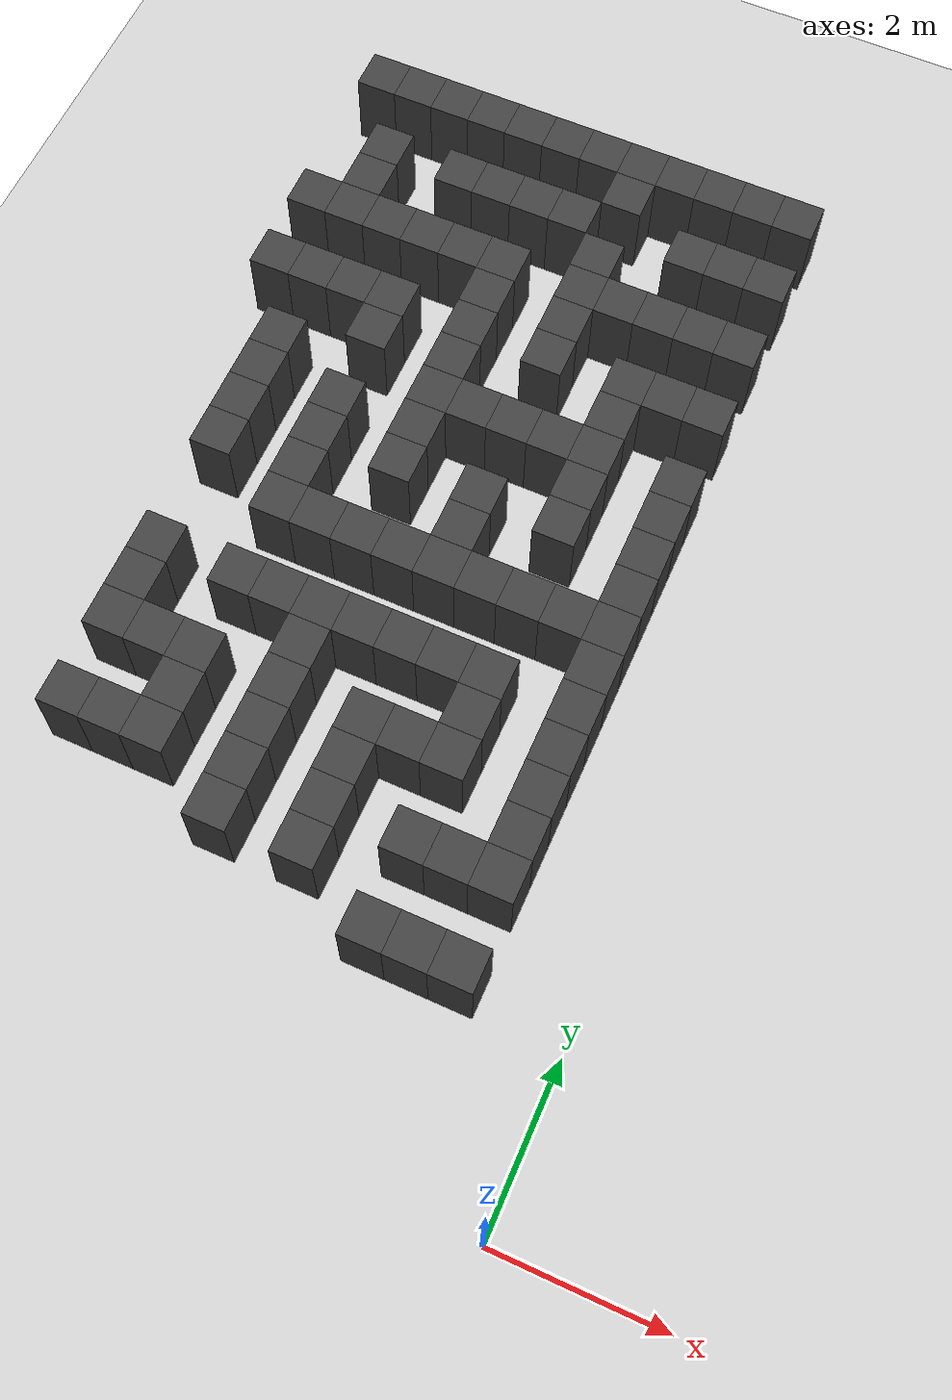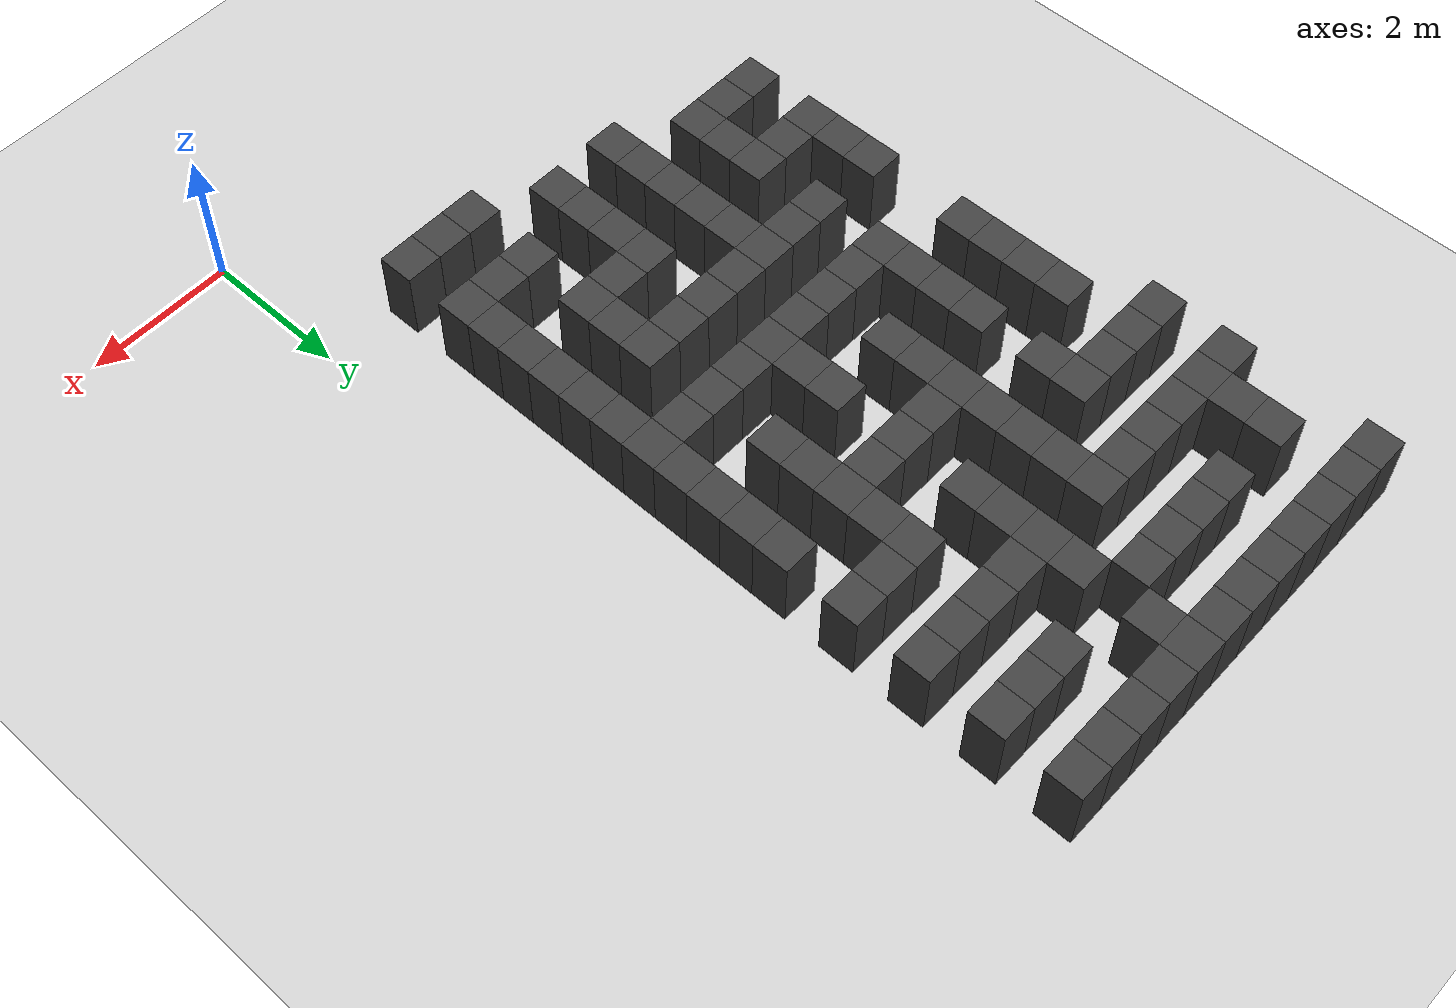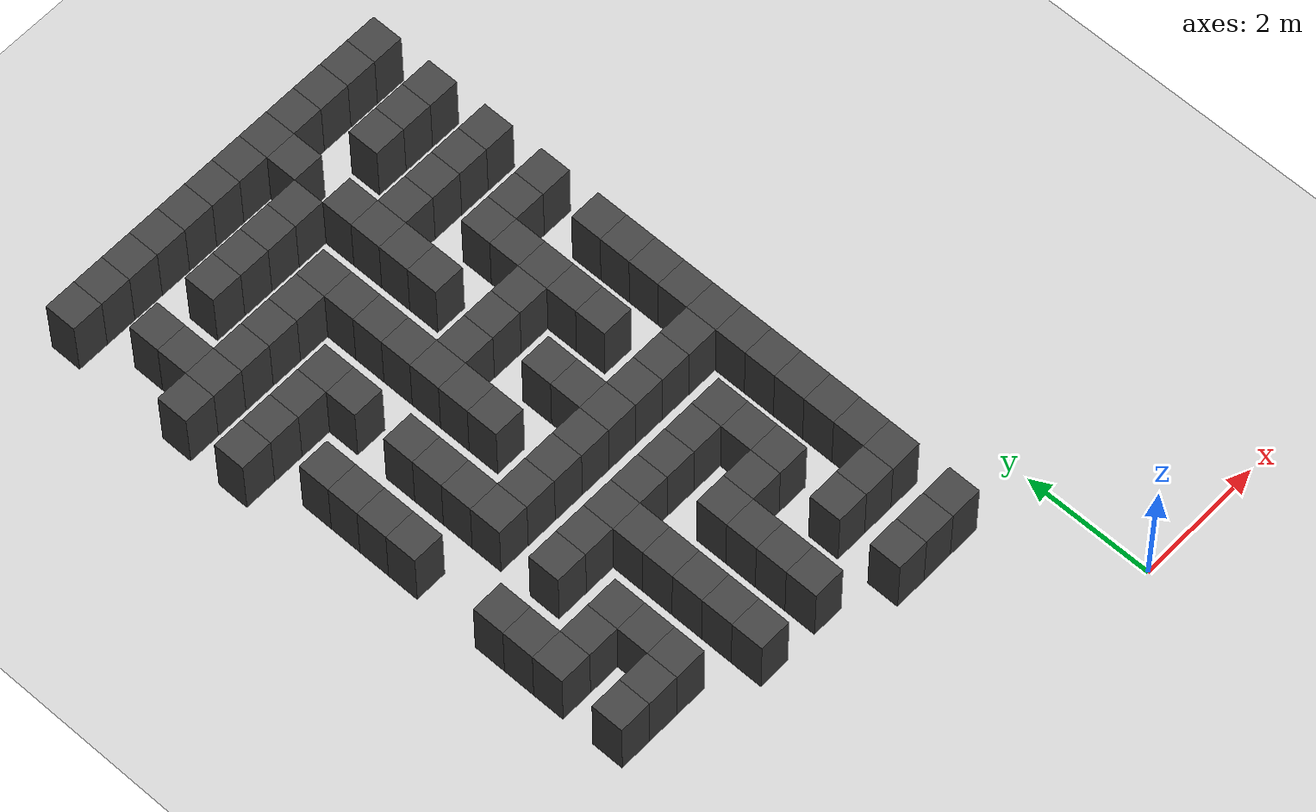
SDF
<sdf version="1.7">
 <world name="map_18596">
  <model name="ground_plane">
   <static>true</static>
   <link name="link">
    <collision name="collision">
     <geometry><plane><normal>0 0 1</normal><size>200 200</size></plane></geometry>
    </collision>
    <visual name="visual">
     <geometry><plane><normal>0 0 1</normal><size>200 200</size></plane></geometry>
     <material><ambient>0.8 0.8 0.8 1</ambient><diffuse>0.8 0.8 0.8 1</diffuse></material>
    </visual>
   </link>
  </model>
  <model name="maze_environment">
   <static>true</static>
   <link name="wall_11">
    <pose>-6.750 12.250 0.500 0 0 0</pose>
    <collision name="col"><geometry><box><size>0.5 0.5 1.0</size></box></geometry></collision>
    <visual name="vis">
     <geometry><box><size>0.5 0.5 1.0</size></box></geometry>
     <material><ambient>0.15 0.15 0.15 1</ambient><diffuse>0.25 0.25 0.25 1</diffuse></material>
    </visual>
   </link>
   <link name="wall_12">
    <pose>-6.250 12.250 0.500 0 0 0</pose>
    <collision name="col"><geometry><box><size>0.5 0.5 1.0</size></box></geometry></collision>
    <visual name="vis">
     <geometry><box><size>0.5 0.5 1.0</size></box></geometry>
     <material><ambient>0.15 0.15 0.15 1</ambient><diffuse>0.25 0.25 0.25 1</diffuse></material>
    </visual>
   </link>
   <link name="wall_13">
    <pose>-5.750 12.250 0.500 0 0 0</pose>
    <collision name="col"><geometry><box><size>0.5 0.5 1.0</size></box></geometry></collision>
    <visual name="vis">
     <geometry><box><size>0.5 0.5 1.0</size></box></geometry>
     <material><ambient>0.15 0.15 0.15 1</ambient><diffuse>0.25 0.25 0.25 1</diffuse></material>
    </visual>
   </link>
   <link name="wall_14">
    <pose>-5.250 12.250 0.500 0 0 0</pose>
    <collision name="col"><geometry><box><size>0.5 0.5 1.0</size></box></geometry></collision>
    <visual name="vis">
     <geometry><box><size>0.5 0.5 1.0</size></box></geometry>
     <material><ambient>0.15 0.15 0.15 1</ambient><diffuse>0.25 0.25 0.25 1</diffuse></material>
    </visual>
   </link>
   <link name="wall_15">
    <pose>-4.750 12.250 0.500 0 0 0</pose>
    <collision name="col"><geometry><box><size>0.5 0.5 1.0</size></box></geometry></collision>
    <visual name="vis">
     <geometry><box><size>0.5 0.5 1.0</size></box></geometry>
     <material><ambient>0.15 0.15 0.15 1</ambient><diffuse>0.25 0.25 0.25 1</diffuse></material>
    </visual>
   </link>
   <link name="wall_16">
    <pose>-4.250 12.250 0.500 0 0 0</pose>
    <collision name="col"><geometry><box><size>0.5 0.5 1.0</size></box></geometry></collision>
    <visual name="vis">
     <geometry><box><size>0.5 0.5 1.0</size></box></geometry>
     <material><ambient>0.15 0.15 0.15 1</ambient><diffuse>0.25 0.25 0.25 1</diffuse></material>
    </visual>
   </link>
   <link name="wall_17">
    <pose>-3.750 12.250 0.500 0 0 0</pose>
    <collision name="col"><geometry><box><size>0.5 0.5 1.0</size></box></geometry></collision>
    <visual name="vis">
     <geometry><box><size>0.5 0.5 1.0</size></box></geometry>
     <material><ambient>0.15 0.15 0.15 1</ambient><diffuse>0.25 0.25 0.25 1</diffuse></material>
    </visual>
   </link>
   <link name="wall_18">
    <pose>-3.250 12.250 0.500 0 0 0</pose>
    <collision name="col"><geometry><box><size>0.5 0.5 1.0</size></box></geometry></collision>
    <visual name="vis">
     <geometry><box><size>0.5 0.5 1.0</size></box></geometry>
     <material><ambient>0.15 0.15 0.15 1</ambient><diffuse>0.25 0.25 0.25 1</diffuse></material>
    </visual>
   </link>
   <link name="wall_19">
    <pose>-2.750 12.250 0.500 0 0 0</pose>
    <collision name="col"><geometry><box><size>0.5 0.5 1.0</size></box></geometry></collision>
    <visual name="vis">
     <geometry><box><size>0.5 0.5 1.0</size></box></geometry>
     <material><ambient>0.15 0.15 0.15 1</ambient><diffuse>0.25 0.25 0.25 1</diffuse></material>
    </visual>
   </link>
   <link name="wall_20">
    <pose>-2.250 12.250 0.500 0 0 0</pose>
    <collision name="col"><geometry><box><size>0.5 0.5 1.0</size></box></geometry></collision>
    <visual name="vis">
     <geometry><box><size>0.5 0.5 1.0</size></box></geometry>
     <material><ambient>0.15 0.15 0.15 1</ambient><diffuse>0.25 0.25 0.25 1</diffuse></material>
    </visual>
   </link>
   <link name="wall_21">
    <pose>-1.750 12.250 0.500 0 0 0</pose>
    <collision name="col"><geometry><box><size>0.5 0.5 1.0</size></box></geometry></collision>
    <visual name="vis">
     <geometry><box><size>0.5 0.5 1.0</size></box></geometry>
     <material><ambient>0.15 0.15 0.15 1</ambient><diffuse>0.25 0.25 0.25 1</diffuse></material>
    </visual>
   </link>
   <link name="wall_22">
    <pose>-1.250 12.250 0.500 0 0 0</pose>
    <collision name="col"><geometry><box><size>0.5 0.5 1.0</size></box></geometry></collision>
    <visual name="vis">
     <geometry><box><size>0.5 0.5 1.0</size></box></geometry>
     <material><ambient>0.15 0.15 0.15 1</ambient><diffuse>0.25 0.25 0.25 1</diffuse></material>
    </visual>
   </link>
   <link name="wall_54">
    <pose>-3.250 11.750 0.500 0 0 0</pose>
    <collision name="col"><geometry><box><size>0.5 0.5 1.0</size></box></geometry></collision>
    <visual name="vis">
     <geometry><box><size>0.5 0.5 1.0</size></box></geometry>
     <material><ambient>0.15 0.15 0.15 1</ambient><diffuse>0.25 0.25 0.25 1</diffuse></material>
    </visual>
   </link>
   <link name="wall_65">
    <pose>-6.250 11.250 0.500 0 0 0</pose>
    <collision name="col"><geometry><box><size>0.5 0.5 1.0</size></box></geometry></collision>
    <visual name="vis">
     <geometry><box><size>0.5 0.5 1.0</size></box></geometry>
     <material><ambient>0.15 0.15 0.15 1</ambient><diffuse>0.25 0.25 0.25 1</diffuse></material>
    </visual>
   </link>
   <link name="wall_66">
    <pose>-5.250 11.250 0.500 0 0 0</pose>
    <collision name="col"><geometry><box><size>0.5 0.5 1.0</size></box></geometry></collision>
    <visual name="vis">
     <geometry><box><size>0.5 0.5 1.0</size></box></geometry>
     <material><ambient>0.15 0.15 0.15 1</ambient><diffuse>0.25 0.25 0.25 1</diffuse></material>
    </visual>
   </link>
   <link name="wall_67">
    <pose>-4.750 11.250 0.500 0 0 0</pose>
    <collision name="col"><geometry><box><size>0.5 0.5 1.0</size></box></geometry></collision>
    <visual name="vis">
     <geometry><box><size>0.5 0.5 1.0</size></box></geometry>
     <material><ambient>0.15 0.15 0.15 1</ambient><diffuse>0.25 0.25 0.25 1</diffuse></material>
    </visual>
   </link>
   <link name="wall_68">
    <pose>-4.250 11.250 0.500 0 0 0</pose>
    <collision name="col"><geometry><box><size>0.5 0.5 1.0</size></box></geometry></collision>
    <visual name="vis">
     <geometry><box><size>0.5 0.5 1.0</size></box></geometry>
     <material><ambient>0.15 0.15 0.15 1</ambient><diffuse>0.25 0.25 0.25 1</diffuse></material>
    </visual>
   </link>
   <link name="wall_69">
    <pose>-3.750 11.250 0.500 0 0 0</pose>
    <collision name="col"><geometry><box><size>0.5 0.5 1.0</size></box></geometry></collision>
    <visual name="vis">
     <geometry><box><size>0.5 0.5 1.0</size></box></geometry>
     <material><ambient>0.15 0.15 0.15 1</ambient><diffuse>0.25 0.25 0.25 1</diffuse></material>
    </visual>
   </link>
   <link name="wall_70">
    <pose>-2.250 11.250 0.500 0 0 0</pose>
    <collision name="col"><geometry><box><size>0.5 0.5 1.0</size></box></geometry></collision>
    <visual name="vis">
     <geometry><box><size>0.5 0.5 1.0</size></box></geometry>
     <material><ambient>0.15 0.15 0.15 1</ambient><diffuse>0.25 0.25 0.25 1</diffuse></material>
    </visual>
   </link>
   <link name="wall_71">
    <pose>-1.750 11.250 0.500 0 0 0</pose>
    <collision name="col"><geometry><box><size>0.5 0.5 1.0</size></box></geometry></collision>
    <visual name="vis">
     <geometry><box><size>0.5 0.5 1.0</size></box></geometry>
     <material><ambient>0.15 0.15 0.15 1</ambient><diffuse>0.25 0.25 0.25 1</diffuse></material>
    </visual>
   </link>
   <link name="wall_72">
    <pose>-1.250 11.250 0.500 0 0 0</pose>
    <collision name="col"><geometry><box><size>0.5 0.5 1.0</size></box></geometry></collision>
    <visual name="vis">
     <geometry><box><size>0.5 0.5 1.0</size></box></geometry>
     <material><ambient>0.15 0.15 0.15 1</ambient><diffuse>0.25 0.25 0.25 1</diffuse></material>
    </visual>
   </link>
   <link name="wall_96">
    <pose>-6.250 10.750 0.500 0 0 0</pose>
    <collision name="col"><geometry><box><size>0.5 0.5 1.0</size></box></geometry></collision>
    <visual name="vis">
     <geometry><box><size>0.5 0.5 1.0</size></box></geometry>
     <material><ambient>0.15 0.15 0.15 1</ambient><diffuse>0.25 0.25 0.25 1</diffuse></material>
    </visual>
   </link>
   <link name="wall_97">
    <pose>-3.250 10.750 0.500 0 0 0</pose>
    <collision name="col"><geometry><box><size>0.5 0.5 1.0</size></box></geometry></collision>
    <visual name="vis">
     <geometry><box><size>0.5 0.5 1.0</size></box></geometry>
     <material><ambient>0.15 0.15 0.15 1</ambient><diffuse>0.25 0.25 0.25 1</diffuse></material>
    </visual>
   </link>
   <link name="wall_116">
    <pose>-6.750 10.250 0.500 0 0 0</pose>
    <collision name="col"><geometry><box><size>0.5 0.5 1.0</size></box></geometry></collision>
    <visual name="vis">
     <geometry><box><size>0.5 0.5 1.0</size></box></geometry>
     <material><ambient>0.15 0.15 0.15 1</ambient><diffuse>0.25 0.25 0.25 1</diffuse></material>
    </visual>
   </link>
   <link name="wall_117">
    <pose>-6.250 10.250 0.500 0 0 0</pose>
    <collision name="col"><geometry><box><size>0.5 0.5 1.0</size></box></geometry></collision>
    <visual name="vis">
     <geometry><box><size>0.5 0.5 1.0</size></box></geometry>
     <material><ambient>0.15 0.15 0.15 1</ambient><diffuse>0.25 0.25 0.25 1</diffuse></material>
    </visual>
   </link>
   <link name="wall_118">
    <pose>-5.750 10.250 0.500 0 0 0</pose>
    <collision name="col"><geometry><box><size>0.5 0.5 1.0</size></box></geometry></collision>
    <visual name="vis">
     <geometry><box><size>0.5 0.5 1.0</size></box></geometry>
     <material><ambient>0.15 0.15 0.15 1</ambient><diffuse>0.25 0.25 0.25 1</diffuse></material>
    </visual>
   </link>
   <link name="wall_119">
    <pose>-5.250 10.250 0.500 0 0 0</pose>
    <collision name="col"><geometry><box><size>0.5 0.5 1.0</size></box></geometry></collision>
    <visual name="vis">
     <geometry><box><size>0.5 0.5 1.0</size></box></geometry>
     <material><ambient>0.15 0.15 0.15 1</ambient><diffuse>0.25 0.25 0.25 1</diffuse></material>
    </visual>
   </link>
   <link name="wall_120">
    <pose>-4.750 10.250 0.500 0 0 0</pose>
    <collision name="col"><geometry><box><size>0.5 0.5 1.0</size></box></geometry></collision>
    <visual name="vis">
     <geometry><box><size>0.5 0.5 1.0</size></box></geometry>
     <material><ambient>0.15 0.15 0.15 1</ambient><diffuse>0.25 0.25 0.25 1</diffuse></material>
    </visual>
   </link>
   <link name="wall_121">
    <pose>-4.250 10.250 0.500 0 0 0</pose>
    <collision name="col"><geometry><box><size>0.5 0.5 1.0</size></box></geometry></collision>
    <visual name="vis">
     <geometry><box><size>0.5 0.5 1.0</size></box></geometry>
     <material><ambient>0.15 0.15 0.15 1</ambient><diffuse>0.25 0.25 0.25 1</diffuse></material>
    </visual>
   </link>
   <link name="wall_122">
    <pose>-3.250 10.250 0.500 0 0 0</pose>
    <collision name="col"><geometry><box><size>0.5 0.5 1.0</size></box></geometry></collision>
    <visual name="vis">
     <geometry><box><size>0.5 0.5 1.0</size></box></geometry>
     <material><ambient>0.15 0.15 0.15 1</ambient><diffuse>0.25 0.25 0.25 1</diffuse></material>
    </visual>
   </link>
   <link name="wall_123">
    <pose>-2.750 10.250 0.500 0 0 0</pose>
    <collision name="col"><geometry><box><size>0.5 0.5 1.0</size></box></geometry></collision>
    <visual name="vis">
     <geometry><box><size>0.5 0.5 1.0</size></box></geometry>
     <material><ambient>0.15 0.15 0.15 1</ambient><diffuse>0.25 0.25 0.25 1</diffuse></material>
    </visual>
   </link>
   <link name="wall_124">
    <pose>-2.250 10.250 0.500 0 0 0</pose>
    <collision name="col"><geometry><box><size>0.5 0.5 1.0</size></box></geometry></collision>
    <visual name="vis">
     <geometry><box><size>0.5 0.5 1.0</size></box></geometry>
     <material><ambient>0.15 0.15 0.15 1</ambient><diffuse>0.25 0.25 0.25 1</diffuse></material>
    </visual>
   </link>
   <link name="wall_125">
    <pose>-1.750 10.250 0.500 0 0 0</pose>
    <collision name="col"><geometry><box><size>0.5 0.5 1.0</size></box></geometry></collision>
    <visual name="vis">
     <geometry><box><size>0.5 0.5 1.0</size></box></geometry>
     <material><ambient>0.15 0.15 0.15 1</ambient><diffuse>0.25 0.25 0.25 1</diffuse></material>
    </visual>
   </link>
   <link name="wall_126">
    <pose>-1.250 10.250 0.500 0 0 0</pose>
    <collision name="col"><geometry><box><size>0.5 0.5 1.0</size></box></geometry></collision>
    <visual name="vis">
     <geometry><box><size>0.5 0.5 1.0</size></box></geometry>
     <material><ambient>0.15 0.15 0.15 1</ambient><diffuse>0.25 0.25 0.25 1</diffuse></material>
    </visual>
   </link>
   <link name="wall_148">
    <pose>-4.250 9.750 0.500 0 0 0</pose>
    <collision name="col"><geometry><box><size>0.5 0.5 1.0</size></box></geometry></collision>
    <visual name="vis">
     <geometry><box><size>0.5 0.5 1.0</size></box></geometry>
     <material><ambient>0.15 0.15 0.15 1</ambient><diffuse>0.25 0.25 0.25 1</diffuse></material>
    </visual>
   </link>
   <link name="wall_149">
    <pose>-3.250 9.750 0.500 0 0 0</pose>
    <collision name="col"><geometry><box><size>0.5 0.5 1.0</size></box></geometry></collision>
    <visual name="vis">
     <geometry><box><size>0.5 0.5 1.0</size></box></geometry>
     <material><ambient>0.15 0.15 0.15 1</ambient><diffuse>0.25 0.25 0.25 1</diffuse></material>
    </visual>
   </link>
   <link name="wall_165">
    <pose>-6.750 9.250 0.500 0 0 0</pose>
    <collision name="col"><geometry><box><size>0.5 0.5 1.0</size></box></geometry></collision>
    <visual name="vis">
     <geometry><box><size>0.5 0.5 1.0</size></box></geometry>
     <material><ambient>0.15 0.15 0.15 1</ambient><diffuse>0.25 0.25 0.25 1</diffuse></material>
    </visual>
   </link>
   <link name="wall_166">
    <pose>-6.250 9.250 0.500 0 0 0</pose>
    <collision name="col"><geometry><box><size>0.5 0.5 1.0</size></box></geometry></collision>
    <visual name="vis">
     <geometry><box><size>0.5 0.5 1.0</size></box></geometry>
     <material><ambient>0.15 0.15 0.15 1</ambient><diffuse>0.25 0.25 0.25 1</diffuse></material>
    </visual>
   </link>
   <link name="wall_167">
    <pose>-5.750 9.250 0.500 0 0 0</pose>
    <collision name="col"><geometry><box><size>0.5 0.5 1.0</size></box></geometry></collision>
    <visual name="vis">
     <geometry><box><size>0.5 0.5 1.0</size></box></geometry>
     <material><ambient>0.15 0.15 0.15 1</ambient><diffuse>0.25 0.25 0.25 1</diffuse></material>
    </visual>
   </link>
   <link name="wall_168">
    <pose>-5.250 9.250 0.500 0 0 0</pose>
    <collision name="col"><geometry><box><size>0.5 0.5 1.0</size></box></geometry></collision>
    <visual name="vis">
     <geometry><box><size>0.5 0.5 1.0</size></box></geometry>
     <material><ambient>0.15 0.15 0.15 1</ambient><diffuse>0.25 0.25 0.25 1</diffuse></material>
    </visual>
   </link>
   <link name="wall_169">
    <pose>-4.250 9.250 0.500 0 0 0</pose>
    <collision name="col"><geometry><box><size>0.5 0.5 1.0</size></box></geometry></collision>
    <visual name="vis">
     <geometry><box><size>0.5 0.5 1.0</size></box></geometry>
     <material><ambient>0.15 0.15 0.15 1</ambient><diffuse>0.25 0.25 0.25 1</diffuse></material>
    </visual>
   </link>
   <link name="wall_170">
    <pose>-3.250 9.250 0.500 0 0 0</pose>
    <collision name="col"><geometry><box><size>0.5 0.5 1.0</size></box></geometry></collision>
    <visual name="vis">
     <geometry><box><size>0.5 0.5 1.0</size></box></geometry>
     <material><ambient>0.15 0.15 0.15 1</ambient><diffuse>0.25 0.25 0.25 1</diffuse></material>
    </visual>
   </link>
   <link name="wall_171">
    <pose>-2.250 9.250 0.500 0 0 0</pose>
    <collision name="col"><geometry><box><size>0.5 0.5 1.0</size></box></geometry></collision>
    <visual name="vis">
     <geometry><box><size>0.5 0.5 1.0</size></box></geometry>
     <material><ambient>0.15 0.15 0.15 1</ambient><diffuse>0.25 0.25 0.25 1</diffuse></material>
    </visual>
   </link>
   <link name="wall_172">
    <pose>-1.750 9.250 0.500 0 0 0</pose>
    <collision name="col"><geometry><box><size>0.5 0.5 1.0</size></box></geometry></collision>
    <visual name="vis">
     <geometry><box><size>0.5 0.5 1.0</size></box></geometry>
     <material><ambient>0.15 0.15 0.15 1</ambient><diffuse>0.25 0.25 0.25 1</diffuse></material>
    </visual>
   </link>
   <link name="wall_173">
    <pose>-1.250 9.250 0.500 0 0 0</pose>
    <collision name="col"><geometry><box><size>0.5 0.5 1.0</size></box></geometry></collision>
    <visual name="vis">
     <geometry><box><size>0.5 0.5 1.0</size></box></geometry>
     <material><ambient>0.15 0.15 0.15 1</ambient><diffuse>0.25 0.25 0.25 1</diffuse></material>
    </visual>
   </link>
   <link name="wall_199">
    <pose>-5.250 8.750 0.500 0 0 0</pose>
    <collision name="col"><geometry><box><size>0.5 0.5 1.0</size></box></geometry></collision>
    <visual name="vis">
     <geometry><box><size>0.5 0.5 1.0</size></box></geometry>
     <material><ambient>0.15 0.15 0.15 1</ambient><diffuse>0.25 0.25 0.25 1</diffuse></material>
    </visual>
   </link>
   <link name="wall_200">
    <pose>-4.250 8.750 0.500 0 0 0</pose>
    <collision name="col"><geometry><box><size>0.5 0.5 1.0</size></box></geometry></collision>
    <visual name="vis">
     <geometry><box><size>0.5 0.5 1.0</size></box></geometry>
     <material><ambient>0.15 0.15 0.15 1</ambient><diffuse>0.25 0.25 0.25 1</diffuse></material>
    </visual>
   </link>
   <link name="wall_201">
    <pose>-2.250 8.750 0.500 0 0 0</pose>
    <collision name="col"><geometry><box><size>0.5 0.5 1.0</size></box></geometry></collision>
    <visual name="vis">
     <geometry><box><size>0.5 0.5 1.0</size></box></geometry>
     <material><ambient>0.15 0.15 0.15 1</ambient><diffuse>0.25 0.25 0.25 1</diffuse></material>
    </visual>
   </link>
   <link name="wall_218">
    <pose>-6.250 8.250 0.500 0 0 0</pose>
    <collision name="col"><geometry><box><size>0.5 0.5 1.0</size></box></geometry></collision>
    <visual name="vis">
     <geometry><box><size>0.5 0.5 1.0</size></box></geometry>
     <material><ambient>0.15 0.15 0.15 1</ambient><diffuse>0.25 0.25 0.25 1</diffuse></material>
    </visual>
   </link>
   <link name="wall_219">
    <pose>-4.250 8.250 0.500 0 0 0</pose>
    <collision name="col"><geometry><box><size>0.5 0.5 1.0</size></box></geometry></collision>
    <visual name="vis">
     <geometry><box><size>0.5 0.5 1.0</size></box></geometry>
     <material><ambient>0.15 0.15 0.15 1</ambient><diffuse>0.25 0.25 0.25 1</diffuse></material>
    </visual>
   </link>
   <link name="wall_220">
    <pose>-3.750 8.250 0.500 0 0 0</pose>
    <collision name="col"><geometry><box><size>0.5 0.5 1.0</size></box></geometry></collision>
    <visual name="vis">
     <geometry><box><size>0.5 0.5 1.0</size></box></geometry>
     <material><ambient>0.15 0.15 0.15 1</ambient><diffuse>0.25 0.25 0.25 1</diffuse></material>
    </visual>
   </link>
   <link name="wall_221">
    <pose>-3.250 8.250 0.500 0 0 0</pose>
    <collision name="col"><geometry><box><size>0.5 0.5 1.0</size></box></geometry></collision>
    <visual name="vis">
     <geometry><box><size>0.5 0.5 1.0</size></box></geometry>
     <material><ambient>0.15 0.15 0.15 1</ambient><diffuse>0.25 0.25 0.25 1</diffuse></material>
    </visual>
   </link>
   <link name="wall_222">
    <pose>-2.750 8.250 0.500 0 0 0</pose>
    <collision name="col"><geometry><box><size>0.5 0.5 1.0</size></box></geometry></collision>
    <visual name="vis">
     <geometry><box><size>0.5 0.5 1.0</size></box></geometry>
     <material><ambient>0.15 0.15 0.15 1</ambient><diffuse>0.25 0.25 0.25 1</diffuse></material>
    </visual>
   </link>
   <link name="wall_223">
    <pose>-2.250 8.250 0.500 0 0 0</pose>
    <collision name="col"><geometry><box><size>0.5 0.5 1.0</size></box></geometry></collision>
    <visual name="vis">
     <geometry><box><size>0.5 0.5 1.0</size></box></geometry>
     <material><ambient>0.15 0.15 0.15 1</ambient><diffuse>0.25 0.25 0.25 1</diffuse></material>
    </visual>
   </link>
   <link name="wall_224">
    <pose>-1.250 8.250 0.500 0 0 0</pose>
    <collision name="col"><geometry><box><size>0.5 0.5 1.0</size></box></geometry></collision>
    <visual name="vis">
     <geometry><box><size>0.5 0.5 1.0</size></box></geometry>
     <material><ambient>0.15 0.15 0.15 1</ambient><diffuse>0.25 0.25 0.25 1</diffuse></material>
    </visual>
   </link>
   <link name="wall_248">
    <pose>-6.250 7.750 0.500 0 0 0</pose>
    <collision name="col"><geometry><box><size>0.5 0.5 1.0</size></box></geometry></collision>
    <visual name="vis">
     <geometry><box><size>0.5 0.5 1.0</size></box></geometry>
     <material><ambient>0.15 0.15 0.15 1</ambient><diffuse>0.25 0.25 0.25 1</diffuse></material>
    </visual>
   </link>
   <link name="wall_249">
    <pose>-5.250 7.750 0.500 0 0 0</pose>
    <collision name="col"><geometry><box><size>0.5 0.5 1.0</size></box></geometry></collision>
    <visual name="vis">
     <geometry><box><size>0.5 0.5 1.0</size></box></geometry>
     <material><ambient>0.15 0.15 0.15 1</ambient><diffuse>0.25 0.25 0.25 1</diffuse></material>
    </visual>
   </link>
   <link name="wall_250">
    <pose>-4.250 7.750 0.500 0 0 0</pose>
    <collision name="col"><geometry><box><size>0.5 0.5 1.0</size></box></geometry></collision>
    <visual name="vis">
     <geometry><box><size>0.5 0.5 1.0</size></box></geometry>
     <material><ambient>0.15 0.15 0.15 1</ambient><diffuse>0.25 0.25 0.25 1</diffuse></material>
    </visual>
   </link>
   <link name="wall_251">
    <pose>-2.250 7.750 0.500 0 0 0</pose>
    <collision name="col"><geometry><box><size>0.5 0.5 1.0</size></box></geometry></collision>
    <visual name="vis">
     <geometry><box><size>0.5 0.5 1.0</size></box></geometry>
     <material><ambient>0.15 0.15 0.15 1</ambient><diffuse>0.25 0.25 0.25 1</diffuse></material>
    </visual>
   </link>
   <link name="wall_252">
    <pose>-1.250 7.750 0.500 0 0 0</pose>
    <collision name="col"><geometry><box><size>0.5 0.5 1.0</size></box></geometry></collision>
    <visual name="vis">
     <geometry><box><size>0.5 0.5 1.0</size></box></geometry>
     <material><ambient>0.15 0.15 0.15 1</ambient><diffuse>0.25 0.25 0.25 1</diffuse></material>
    </visual>
   </link>
   <link name="wall_269">
    <pose>-6.250 7.250 0.500 0 0 0</pose>
    <collision name="col"><geometry><box><size>0.5 0.5 1.0</size></box></geometry></collision>
    <visual name="vis">
     <geometry><box><size>0.5 0.5 1.0</size></box></geometry>
     <material><ambient>0.15 0.15 0.15 1</ambient><diffuse>0.25 0.25 0.25 1</diffuse></material>
    </visual>
   </link>
   <link name="wall_270">
    <pose>-5.250 7.250 0.500 0 0 0</pose>
    <collision name="col"><geometry><box><size>0.5 0.5 1.0</size></box></geometry></collision>
    <visual name="vis">
     <geometry><box><size>0.5 0.5 1.0</size></box></geometry>
     <material><ambient>0.15 0.15 0.15 1</ambient><diffuse>0.25 0.25 0.25 1</diffuse></material>
    </visual>
   </link>
   <link name="wall_271">
    <pose>-4.250 7.250 0.500 0 0 0</pose>
    <collision name="col"><geometry><box><size>0.5 0.5 1.0</size></box></geometry></collision>
    <visual name="vis">
     <geometry><box><size>0.5 0.5 1.0</size></box></geometry>
     <material><ambient>0.15 0.15 0.15 1</ambient><diffuse>0.25 0.25 0.25 1</diffuse></material>
    </visual>
   </link>
   <link name="wall_272">
    <pose>-3.250 7.250 0.500 0 0 0</pose>
    <collision name="col"><geometry><box><size>0.5 0.5 1.0</size></box></geometry></collision>
    <visual name="vis">
     <geometry><box><size>0.5 0.5 1.0</size></box></geometry>
     <material><ambient>0.15 0.15 0.15 1</ambient><diffuse>0.25 0.25 0.25 1</diffuse></material>
    </visual>
   </link>
   <link name="wall_273">
    <pose>-2.250 7.250 0.500 0 0 0</pose>
    <collision name="col"><geometry><box><size>0.5 0.5 1.0</size></box></geometry></collision>
    <visual name="vis">
     <geometry><box><size>0.5 0.5 1.0</size></box></geometry>
     <material><ambient>0.15 0.15 0.15 1</ambient><diffuse>0.25 0.25 0.25 1</diffuse></material>
    </visual>
   </link>
   <link name="wall_274">
    <pose>-1.250 7.250 0.500 0 0 0</pose>
    <collision name="col"><geometry><box><size>0.5 0.5 1.0</size></box></geometry></collision>
    <visual name="vis">
     <geometry><box><size>0.5 0.5 1.0</size></box></geometry>
     <material><ambient>0.15 0.15 0.15 1</ambient><diffuse>0.25 0.25 0.25 1</diffuse></material>
    </visual>
   </link>
   <link name="wall_297">
    <pose>-6.250 6.750 0.500 0 0 0</pose>
    <collision name="col"><geometry><box><size>0.5 0.5 1.0</size></box></geometry></collision>
    <visual name="vis">
     <geometry><box><size>0.5 0.5 1.0</size></box></geometry>
     <material><ambient>0.15 0.15 0.15 1</ambient><diffuse>0.25 0.25 0.25 1</diffuse></material>
    </visual>
   </link>
   <link name="wall_298">
    <pose>-5.250 6.750 0.500 0 0 0</pose>
    <collision name="col"><geometry><box><size>0.5 0.5 1.0</size></box></geometry></collision>
    <visual name="vis">
     <geometry><box><size>0.5 0.5 1.0</size></box></geometry>
     <material><ambient>0.15 0.15 0.15 1</ambient><diffuse>0.25 0.25 0.25 1</diffuse></material>
    </visual>
   </link>
   <link name="wall_299">
    <pose>-3.250 6.750 0.500 0 0 0</pose>
    <collision name="col"><geometry><box><size>0.5 0.5 1.0</size></box></geometry></collision>
    <visual name="vis">
     <geometry><box><size>0.5 0.5 1.0</size></box></geometry>
     <material><ambient>0.15 0.15 0.15 1</ambient><diffuse>0.25 0.25 0.25 1</diffuse></material>
    </visual>
   </link>
   <link name="wall_300">
    <pose>-1.250 6.750 0.500 0 0 0</pose>
    <collision name="col"><geometry><box><size>0.5 0.5 1.0</size></box></geometry></collision>
    <visual name="vis">
     <geometry><box><size>0.5 0.5 1.0</size></box></geometry>
     <material><ambient>0.15 0.15 0.15 1</ambient><diffuse>0.25 0.25 0.25 1</diffuse></material>
    </visual>
   </link>
   <link name="wall_316">
    <pose>-5.250 6.250 0.500 0 0 0</pose>
    <collision name="col"><geometry><box><size>0.5 0.5 1.0</size></box></geometry></collision>
    <visual name="vis">
     <geometry><box><size>0.5 0.5 1.0</size></box></geometry>
     <material><ambient>0.15 0.15 0.15 1</ambient><diffuse>0.25 0.25 0.25 1</diffuse></material>
    </visual>
   </link>
   <link name="wall_317">
    <pose>-4.750 6.250 0.500 0 0 0</pose>
    <collision name="col"><geometry><box><size>0.5 0.5 1.0</size></box></geometry></collision>
    <visual name="vis">
     <geometry><box><size>0.5 0.5 1.0</size></box></geometry>
     <material><ambient>0.15 0.15 0.15 1</ambient><diffuse>0.25 0.25 0.25 1</diffuse></material>
    </visual>
   </link>
   <link name="wall_318">
    <pose>-4.250 6.250 0.500 0 0 0</pose>
    <collision name="col"><geometry><box><size>0.5 0.5 1.0</size></box></geometry></collision>
    <visual name="vis">
     <geometry><box><size>0.5 0.5 1.0</size></box></geometry>
     <material><ambient>0.15 0.15 0.15 1</ambient><diffuse>0.25 0.25 0.25 1</diffuse></material>
    </visual>
   </link>
   <link name="wall_319">
    <pose>-3.750 6.250 0.500 0 0 0</pose>
    <collision name="col"><geometry><box><size>0.5 0.5 1.0</size></box></geometry></collision>
    <visual name="vis">
     <geometry><box><size>0.5 0.5 1.0</size></box></geometry>
     <material><ambient>0.15 0.15 0.15 1</ambient><diffuse>0.25 0.25 0.25 1</diffuse></material>
    </visual>
   </link>
   <link name="wall_320">
    <pose>-3.250 6.250 0.500 0 0 0</pose>
    <collision name="col"><geometry><box><size>0.5 0.5 1.0</size></box></geometry></collision>
    <visual name="vis">
     <geometry><box><size>0.5 0.5 1.0</size></box></geometry>
     <material><ambient>0.15 0.15 0.15 1</ambient><diffuse>0.25 0.25 0.25 1</diffuse></material>
    </visual>
   </link>
   <link name="wall_321">
    <pose>-2.750 6.250 0.500 0 0 0</pose>
    <collision name="col"><geometry><box><size>0.5 0.5 1.0</size></box></geometry></collision>
    <visual name="vis">
     <geometry><box><size>0.5 0.5 1.0</size></box></geometry>
     <material><ambient>0.15 0.15 0.15 1</ambient><diffuse>0.25 0.25 0.25 1</diffuse></material>
    </visual>
   </link>
   <link name="wall_322">
    <pose>-2.250 6.250 0.500 0 0 0</pose>
    <collision name="col"><geometry><box><size>0.5 0.5 1.0</size></box></geometry></collision>
    <visual name="vis">
     <geometry><box><size>0.5 0.5 1.0</size></box></geometry>
     <material><ambient>0.15 0.15 0.15 1</ambient><diffuse>0.25 0.25 0.25 1</diffuse></material>
    </visual>
   </link>
   <link name="wall_323">
    <pose>-1.750 6.250 0.500 0 0 0</pose>
    <collision name="col"><geometry><box><size>0.5 0.5 1.0</size></box></geometry></collision>
    <visual name="vis">
     <geometry><box><size>0.5 0.5 1.0</size></box></geometry>
     <material><ambient>0.15 0.15 0.15 1</ambient><diffuse>0.25 0.25 0.25 1</diffuse></material>
    </visual>
   </link>
   <link name="wall_324">
    <pose>-1.250 6.250 0.500 0 0 0</pose>
    <collision name="col"><geometry><box><size>0.5 0.5 1.0</size></box></geometry></collision>
    <visual name="vis">
     <geometry><box><size>0.5 0.5 1.0</size></box></geometry>
     <material><ambient>0.15 0.15 0.15 1</ambient><diffuse>0.25 0.25 0.25 1</diffuse></material>
    </visual>
   </link>
   <link name="wall_346">
    <pose>-1.250 5.750 0.500 0 0 0</pose>
    <collision name="col"><geometry><box><size>0.5 0.5 1.0</size></box></geometry></collision>
    <visual name="vis">
     <geometry><box><size>0.5 0.5 1.0</size></box></geometry>
     <material><ambient>0.15 0.15 0.15 1</ambient><diffuse>0.25 0.25 0.25 1</diffuse></material>
    </visual>
   </link>
   <link name="wall_365">
    <pose>-6.250 5.250 0.500 0 0 0</pose>
    <collision name="col"><geometry><box><size>0.5 0.5 1.0</size></box></geometry></collision>
    <visual name="vis">
     <geometry><box><size>0.5 0.5 1.0</size></box></geometry>
     <material><ambient>0.15 0.15 0.15 1</ambient><diffuse>0.25 0.25 0.25 1</diffuse></material>
    </visual>
   </link>
   <link name="wall_366">
    <pose>-5.250 5.250 0.500 0 0 0</pose>
    <collision name="col"><geometry><box><size>0.5 0.5 1.0</size></box></geometry></collision>
    <visual name="vis">
     <geometry><box><size>0.5 0.5 1.0</size></box></geometry>
     <material><ambient>0.15 0.15 0.15 1</ambient><diffuse>0.25 0.25 0.25 1</diffuse></material>
    </visual>
   </link>
   <link name="wall_367">
    <pose>-4.750 5.250 0.500 0 0 0</pose>
    <collision name="col"><geometry><box><size>0.5 0.5 1.0</size></box></geometry></collision>
    <visual name="vis">
     <geometry><box><size>0.5 0.5 1.0</size></box></geometry>
     <material><ambient>0.15 0.15 0.15 1</ambient><diffuse>0.25 0.25 0.25 1</diffuse></material>
    </visual>
   </link>
   <link name="wall_368">
    <pose>-4.250 5.250 0.500 0 0 0</pose>
    <collision name="col"><geometry><box><size>0.5 0.5 1.0</size></box></geometry></collision>
    <visual name="vis">
     <geometry><box><size>0.5 0.5 1.0</size></box></geometry>
     <material><ambient>0.15 0.15 0.15 1</ambient><diffuse>0.25 0.25 0.25 1</diffuse></material>
    </visual>
   </link>
   <link name="wall_369">
    <pose>-3.750 5.250 0.500 0 0 0</pose>
    <collision name="col"><geometry><box><size>0.5 0.5 1.0</size></box></geometry></collision>
    <visual name="vis">
     <geometry><box><size>0.5 0.5 1.0</size></box></geometry>
     <material><ambient>0.15 0.15 0.15 1</ambient><diffuse>0.25 0.25 0.25 1</diffuse></material>
    </visual>
   </link>
   <link name="wall_370">
    <pose>-3.250 5.250 0.500 0 0 0</pose>
    <collision name="col"><geometry><box><size>0.5 0.5 1.0</size></box></geometry></collision>
    <visual name="vis">
     <geometry><box><size>0.5 0.5 1.0</size></box></geometry>
     <material><ambient>0.15 0.15 0.15 1</ambient><diffuse>0.25 0.25 0.25 1</diffuse></material>
    </visual>
   </link>
   <link name="wall_371">
    <pose>-2.750 5.250 0.500 0 0 0</pose>
    <collision name="col"><geometry><box><size>0.5 0.5 1.0</size></box></geometry></collision>
    <visual name="vis">
     <geometry><box><size>0.5 0.5 1.0</size></box></geometry>
     <material><ambient>0.15 0.15 0.15 1</ambient><diffuse>0.25 0.25 0.25 1</diffuse></material>
    </visual>
   </link>
   <link name="wall_372">
    <pose>-2.250 5.250 0.500 0 0 0</pose>
    <collision name="col"><geometry><box><size>0.5 0.5 1.0</size></box></geometry></collision>
    <visual name="vis">
     <geometry><box><size>0.5 0.5 1.0</size></box></geometry>
     <material><ambient>0.15 0.15 0.15 1</ambient><diffuse>0.25 0.25 0.25 1</diffuse></material>
    </visual>
   </link>
   <link name="wall_373">
    <pose>-1.250 5.250 0.500 0 0 0</pose>
    <collision name="col"><geometry><box><size>0.5 0.5 1.0</size></box></geometry></collision>
    <visual name="vis">
     <geometry><box><size>0.5 0.5 1.0</size></box></geometry>
     <material><ambient>0.15 0.15 0.15 1</ambient><diffuse>0.25 0.25 0.25 1</diffuse></material>
    </visual>
   </link>
   <link name="wall_398">
    <pose>-6.250 4.750 0.500 0 0 0</pose>
    <collision name="col"><geometry><box><size>0.5 0.5 1.0</size></box></geometry></collision>
    <visual name="vis">
     <geometry><box><size>0.5 0.5 1.0</size></box></geometry>
     <material><ambient>0.15 0.15 0.15 1</ambient><diffuse>0.25 0.25 0.25 1</diffuse></material>
    </visual>
   </link>
   <link name="wall_399">
    <pose>-4.250 4.750 0.500 0 0 0</pose>
    <collision name="col"><geometry><box><size>0.5 0.5 1.0</size></box></geometry></collision>
    <visual name="vis">
     <geometry><box><size>0.5 0.5 1.0</size></box></geometry>
     <material><ambient>0.15 0.15 0.15 1</ambient><diffuse>0.25 0.25 0.25 1</diffuse></material>
    </visual>
   </link>
   <link name="wall_400">
    <pose>-2.250 4.750 0.500 0 0 0</pose>
    <collision name="col"><geometry><box><size>0.5 0.5 1.0</size></box></geometry></collision>
    <visual name="vis">
     <geometry><box><size>0.5 0.5 1.0</size></box></geometry>
     <material><ambient>0.15 0.15 0.15 1</ambient><diffuse>0.25 0.25 0.25 1</diffuse></material>
    </visual>
   </link>
   <link name="wall_401">
    <pose>-1.250 4.750 0.500 0 0 0</pose>
    <collision name="col"><geometry><box><size>0.5 0.5 1.0</size></box></geometry></collision>
    <visual name="vis">
     <geometry><box><size>0.5 0.5 1.0</size></box></geometry>
     <material><ambient>0.15 0.15 0.15 1</ambient><diffuse>0.25 0.25 0.25 1</diffuse></material>
    </visual>
   </link>
   <link name="wall_418">
    <pose>-6.250 4.250 0.500 0 0 0</pose>
    <collision name="col"><geometry><box><size>0.5 0.5 1.0</size></box></geometry></collision>
    <visual name="vis">
     <geometry><box><size>0.5 0.5 1.0</size></box></geometry>
     <material><ambient>0.15 0.15 0.15 1</ambient><diffuse>0.25 0.25 0.25 1</diffuse></material>
    </visual>
   </link>
   <link name="wall_419">
    <pose>-5.750 4.250 0.500 0 0 0</pose>
    <collision name="col"><geometry><box><size>0.5 0.5 1.0</size></box></geometry></collision>
    <visual name="vis">
     <geometry><box><size>0.5 0.5 1.0</size></box></geometry>
     <material><ambient>0.15 0.15 0.15 1</ambient><diffuse>0.25 0.25 0.25 1</diffuse></material>
    </visual>
   </link>
   <link name="wall_420">
    <pose>-5.250 4.250 0.500 0 0 0</pose>
    <collision name="col"><geometry><box><size>0.5 0.5 1.0</size></box></geometry></collision>
    <visual name="vis">
     <geometry><box><size>0.5 0.5 1.0</size></box></geometry>
     <material><ambient>0.15 0.15 0.15 1</ambient><diffuse>0.25 0.25 0.25 1</diffuse></material>
    </visual>
   </link>
   <link name="wall_421">
    <pose>-4.250 4.250 0.500 0 0 0</pose>
    <collision name="col"><geometry><box><size>0.5 0.5 1.0</size></box></geometry></collision>
    <visual name="vis">
     <geometry><box><size>0.5 0.5 1.0</size></box></geometry>
     <material><ambient>0.15 0.15 0.15 1</ambient><diffuse>0.25 0.25 0.25 1</diffuse></material>
    </visual>
   </link>
   <link name="wall_422">
    <pose>-3.250 4.250 0.500 0 0 0</pose>
    <collision name="col"><geometry><box><size>0.5 0.5 1.0</size></box></geometry></collision>
    <visual name="vis">
     <geometry><box><size>0.5 0.5 1.0</size></box></geometry>
     <material><ambient>0.15 0.15 0.15 1</ambient><diffuse>0.25 0.25 0.25 1</diffuse></material>
    </visual>
   </link>
   <link name="wall_423">
    <pose>-2.750 4.250 0.500 0 0 0</pose>
    <collision name="col"><geometry><box><size>0.5 0.5 1.0</size></box></geometry></collision>
    <visual name="vis">
     <geometry><box><size>0.5 0.5 1.0</size></box></geometry>
     <material><ambient>0.15 0.15 0.15 1</ambient><diffuse>0.25 0.25 0.25 1</diffuse></material>
    </visual>
   </link>
   <link name="wall_424">
    <pose>-2.250 4.250 0.500 0 0 0</pose>
    <collision name="col"><geometry><box><size>0.5 0.5 1.0</size></box></geometry></collision>
    <visual name="vis">
     <geometry><box><size>0.5 0.5 1.0</size></box></geometry>
     <material><ambient>0.15 0.15 0.15 1</ambient><diffuse>0.25 0.25 0.25 1</diffuse></material>
    </visual>
   </link>
   <link name="wall_425">
    <pose>-1.250 4.250 0.500 0 0 0</pose>
    <collision name="col"><geometry><box><size>0.5 0.5 1.0</size></box></geometry></collision>
    <visual name="vis">
     <geometry><box><size>0.5 0.5 1.0</size></box></geometry>
     <material><ambient>0.15 0.15 0.15 1</ambient><diffuse>0.25 0.25 0.25 1</diffuse></material>
    </visual>
   </link>
   <link name="wall_446">
    <pose>-5.250 3.750 0.500 0 0 0</pose>
    <collision name="col"><geometry><box><size>0.5 0.5 1.0</size></box></geometry></collision>
    <visual name="vis">
     <geometry><box><size>0.5 0.5 1.0</size></box></geometry>
     <material><ambient>0.15 0.15 0.15 1</ambient><diffuse>0.25 0.25 0.25 1</diffuse></material>
    </visual>
   </link>
   <link name="wall_447">
    <pose>-4.250 3.750 0.500 0 0 0</pose>
    <collision name="col"><geometry><box><size>0.5 0.5 1.0</size></box></geometry></collision>
    <visual name="vis">
     <geometry><box><size>0.5 0.5 1.0</size></box></geometry>
     <material><ambient>0.15 0.15 0.15 1</ambient><diffuse>0.25 0.25 0.25 1</diffuse></material>
    </visual>
   </link>
   <link name="wall_448">
    <pose>-3.250 3.750 0.500 0 0 0</pose>
    <collision name="col"><geometry><box><size>0.5 0.5 1.0</size></box></geometry></collision>
    <visual name="vis">
     <geometry><box><size>0.5 0.5 1.0</size></box></geometry>
     <material><ambient>0.15 0.15 0.15 1</ambient><diffuse>0.25 0.25 0.25 1</diffuse></material>
    </visual>
   </link>
   <link name="wall_449">
    <pose>-1.250 3.750 0.500 0 0 0</pose>
    <collision name="col"><geometry><box><size>0.5 0.5 1.0</size></box></geometry></collision>
    <visual name="vis">
     <geometry><box><size>0.5 0.5 1.0</size></box></geometry>
     <material><ambient>0.15 0.15 0.15 1</ambient><diffuse>0.25 0.25 0.25 1</diffuse></material>
    </visual>
   </link>
   <link name="wall_467">
    <pose>-6.250 3.250 0.500 0 0 0</pose>
    <collision name="col"><geometry><box><size>0.5 0.5 1.0</size></box></geometry></collision>
    <visual name="vis">
     <geometry><box><size>0.5 0.5 1.0</size></box></geometry>
     <material><ambient>0.15 0.15 0.15 1</ambient><diffuse>0.25 0.25 0.25 1</diffuse></material>
    </visual>
   </link>
   <link name="wall_468">
    <pose>-5.750 3.250 0.500 0 0 0</pose>
    <collision name="col"><geometry><box><size>0.5 0.5 1.0</size></box></geometry></collision>
    <visual name="vis">
     <geometry><box><size>0.5 0.5 1.0</size></box></geometry>
     <material><ambient>0.15 0.15 0.15 1</ambient><diffuse>0.25 0.25 0.25 1</diffuse></material>
    </visual>
   </link>
   <link name="wall_469">
    <pose>-5.250 3.250 0.500 0 0 0</pose>
    <collision name="col"><geometry><box><size>0.5 0.5 1.0</size></box></geometry></collision>
    <visual name="vis">
     <geometry><box><size>0.5 0.5 1.0</size></box></geometry>
     <material><ambient>0.15 0.15 0.15 1</ambient><diffuse>0.25 0.25 0.25 1</diffuse></material>
    </visual>
   </link>
   <link name="wall_470">
    <pose>-4.250 3.250 0.500 0 0 0</pose>
    <collision name="col"><geometry><box><size>0.5 0.5 1.0</size></box></geometry></collision>
    <visual name="vis">
     <geometry><box><size>0.5 0.5 1.0</size></box></geometry>
     <material><ambient>0.15 0.15 0.15 1</ambient><diffuse>0.25 0.25 0.25 1</diffuse></material>
    </visual>
   </link>
   <link name="wall_471">
    <pose>-3.250 3.250 0.500 0 0 0</pose>
    <collision name="col"><geometry><box><size>0.5 0.5 1.0</size></box></geometry></collision>
    <visual name="vis">
     <geometry><box><size>0.5 0.5 1.0</size></box></geometry>
     <material><ambient>0.15 0.15 0.15 1</ambient><diffuse>0.25 0.25 0.25 1</diffuse></material>
    </visual>
   </link>
   <link name="wall_472">
    <pose>-2.250 3.250 0.500 0 0 0</pose>
    <collision name="col"><geometry><box><size>0.5 0.5 1.0</size></box></geometry></collision>
    <visual name="vis">
     <geometry><box><size>0.5 0.5 1.0</size></box></geometry>
     <material><ambient>0.15 0.15 0.15 1</ambient><diffuse>0.25 0.25 0.25 1</diffuse></material>
    </visual>
   </link>
   <link name="wall_473">
    <pose>-1.750 3.250 0.500 0 0 0</pose>
    <collision name="col"><geometry><box><size>0.5 0.5 1.0</size></box></geometry></collision>
    <visual name="vis">
     <geometry><box><size>0.5 0.5 1.0</size></box></geometry>
     <material><ambient>0.15 0.15 0.15 1</ambient><diffuse>0.25 0.25 0.25 1</diffuse></material>
    </visual>
   </link>
   <link name="wall_474">
    <pose>-1.250 3.250 0.500 0 0 0</pose>
    <collision name="col"><geometry><box><size>0.5 0.5 1.0</size></box></geometry></collision>
    <visual name="vis">
     <geometry><box><size>0.5 0.5 1.0</size></box></geometry>
     <material><ambient>0.15 0.15 0.15 1</ambient><diffuse>0.25 0.25 0.25 1</diffuse></material>
    </visual>
   </link>
   <link name="wall_498">
    <pose>-4.250 2.750 0.500 0 0 0</pose>
    <collision name="col"><geometry><box><size>0.5 0.5 1.0</size></box></geometry></collision>
    <visual name="vis">
     <geometry><box><size>0.5 0.5 1.0</size></box></geometry>
     <material><ambient>0.15 0.15 0.15 1</ambient><diffuse>0.25 0.25 0.25 1</diffuse></material>
    </visual>
   </link>
   <link name="wall_499">
    <pose>-3.250 2.750 0.500 0 0 0</pose>
    <collision name="col"><geometry><box><size>0.5 0.5 1.0</size></box></geometry></collision>
    <visual name="vis">
     <geometry><box><size>0.5 0.5 1.0</size></box></geometry>
     <material><ambient>0.15 0.15 0.15 1</ambient><diffuse>0.25 0.25 0.25 1</diffuse></material>
    </visual>
   </link>
   <link name="wall_522">
    <pose>-2.250 2.250 0.500 0 0 0</pose>
    <collision name="col"><geometry><box><size>0.5 0.5 1.0</size></box></geometry></collision>
    <visual name="vis">
     <geometry><box><size>0.5 0.5 1.0</size></box></geometry>
     <material><ambient>0.15 0.15 0.15 1</ambient><diffuse>0.25 0.25 0.25 1</diffuse></material>
    </visual>
   </link>
   <link name="wall_523">
    <pose>-1.750 2.250 0.500 0 0 0</pose>
    <collision name="col"><geometry><box><size>0.5 0.5 1.0</size></box></geometry></collision>
    <visual name="vis">
     <geometry><box><size>0.5 0.5 1.0</size></box></geometry>
     <material><ambient>0.15 0.15 0.15 1</ambient><diffuse>0.25 0.25 0.25 1</diffuse></material>
    </visual>
   </link>
   <link name="wall_524">
    <pose>-1.250 2.250 0.500 0 0 0</pose>
    <collision name="col"><geometry><box><size>0.5 0.5 1.0</size></box></geometry></collision>
    <visual name="vis">
     <geometry><box><size>0.5 0.5 1.0</size></box></geometry>
     <material><ambient>0.15 0.15 0.15 1</ambient><diffuse>0.25 0.25 0.25 1</diffuse></material>
    </visual>
   </link>
  </model>
 </world>
</sdf>
